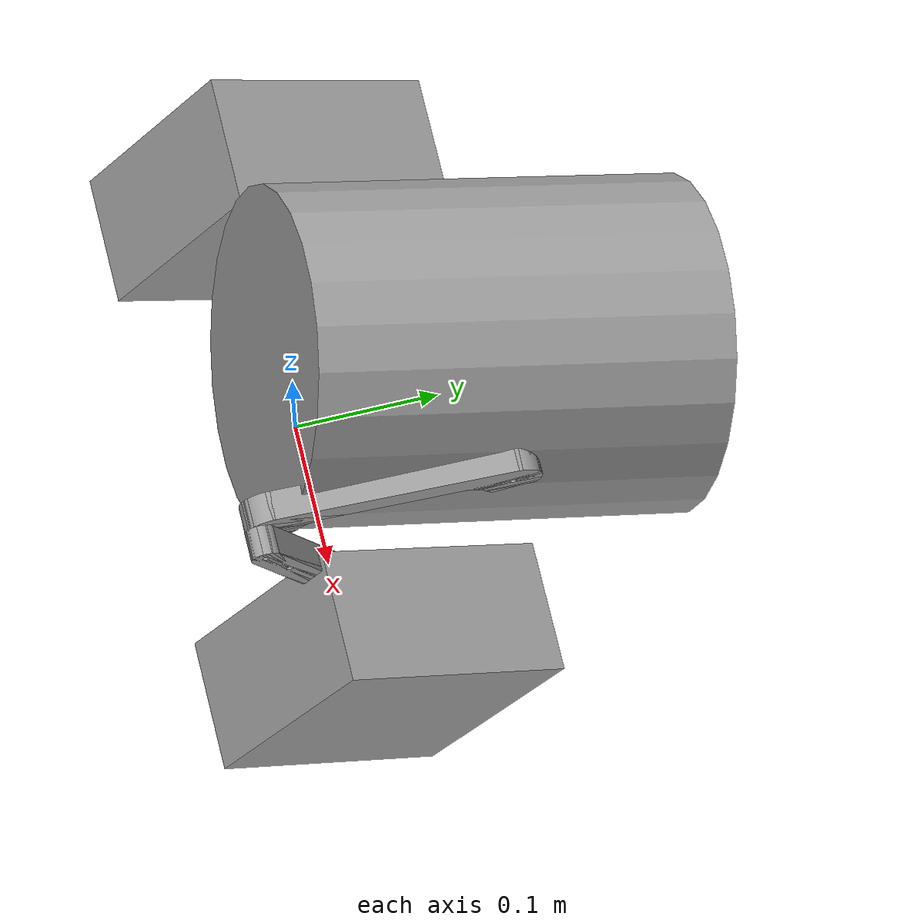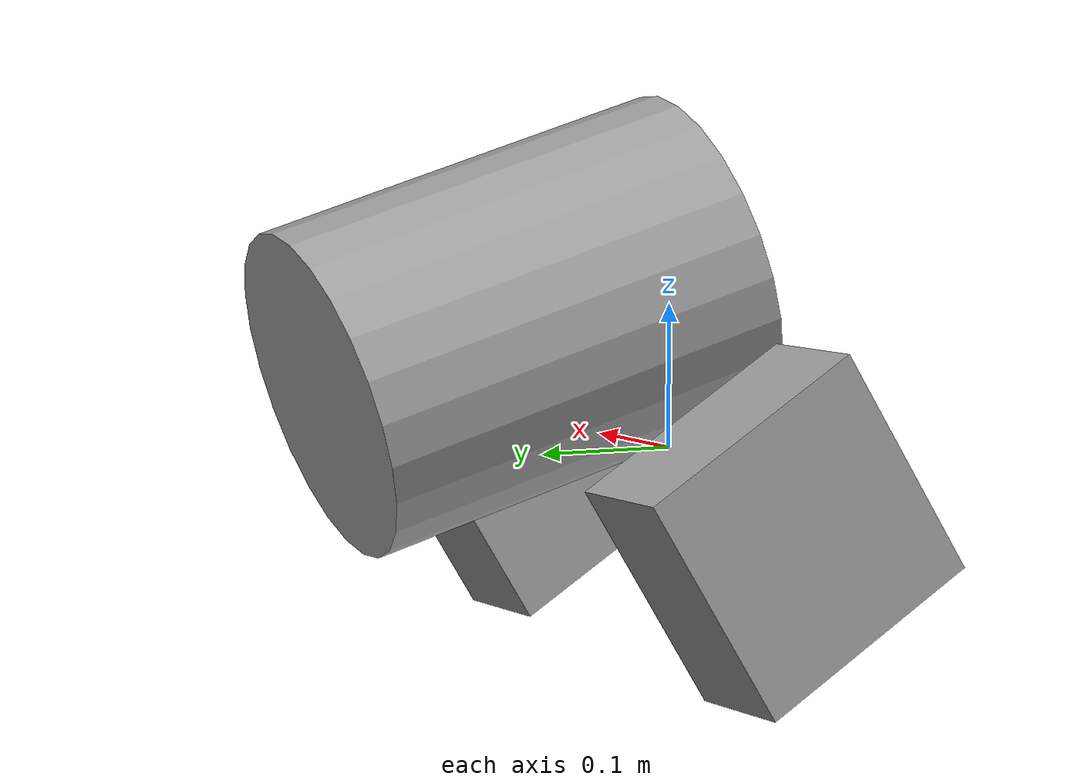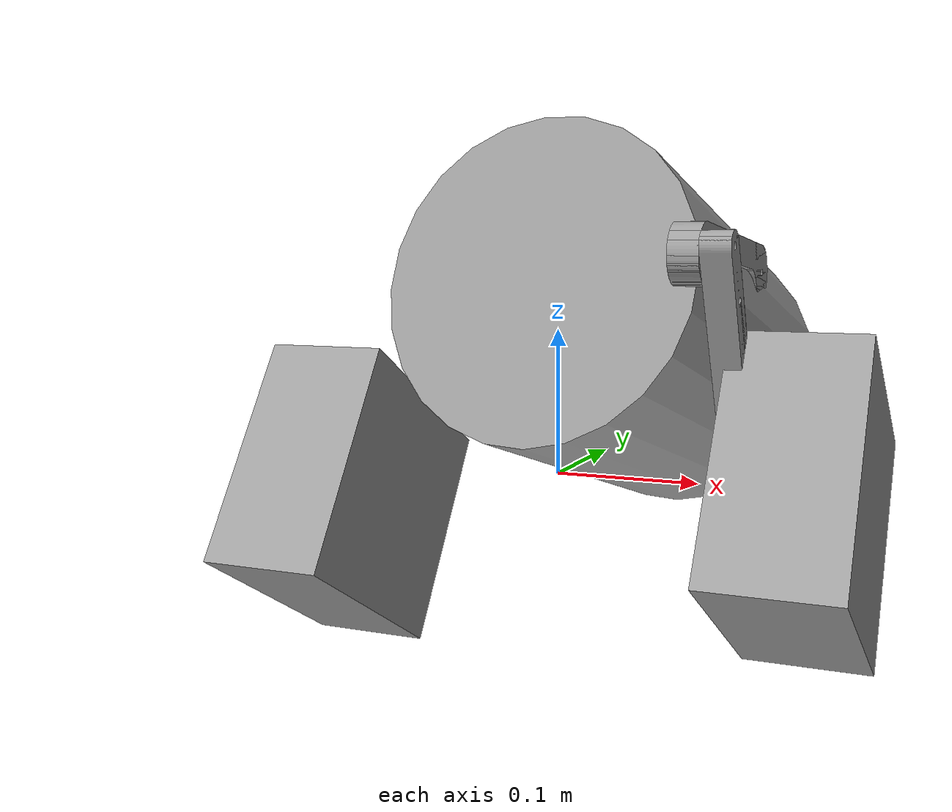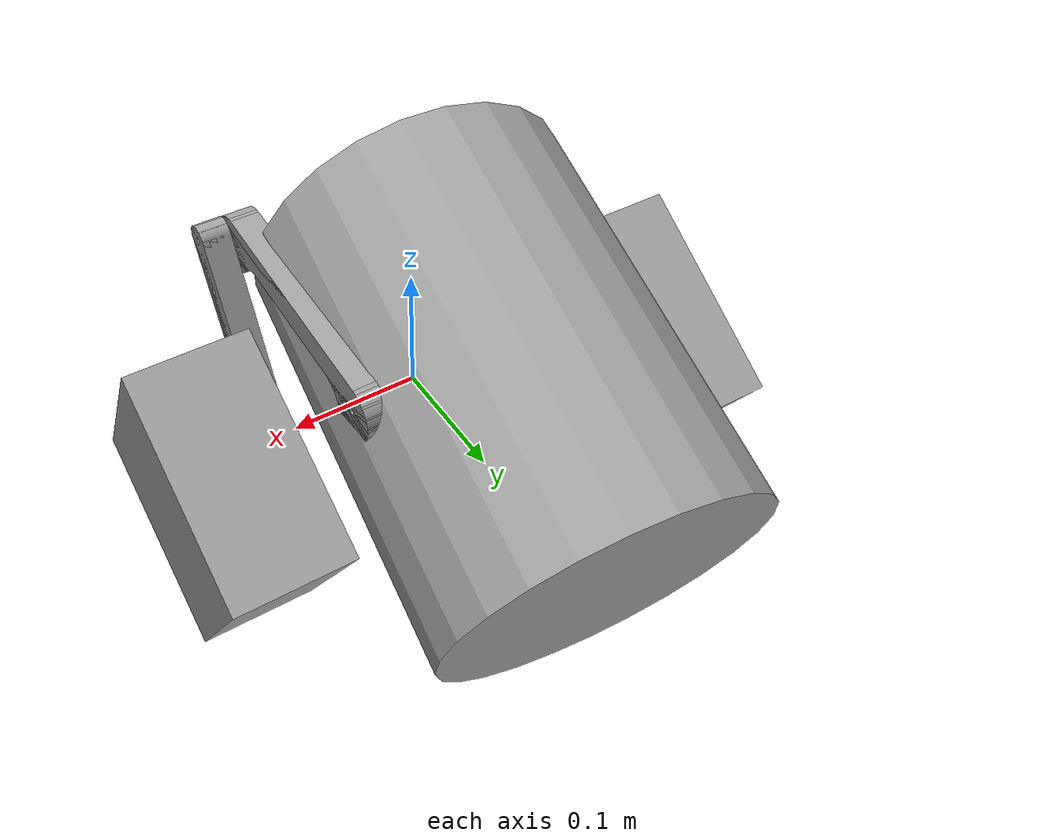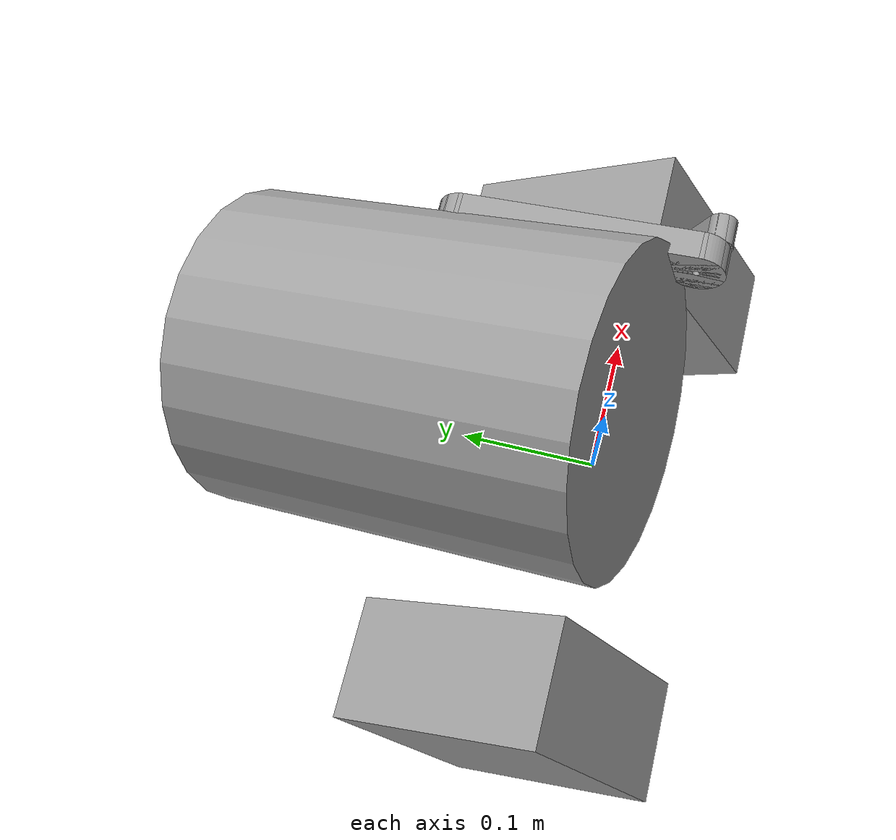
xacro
<?xml version="1.0"?>
<robot xmlns:xacro="http://www.ros.org/wiki/xacro" name="TWLR">

  <!-- Materials (shared across all assemblies) -->
  <material name="material">
    <color rgba="0.627 0.627 0.627 1.0"/>
  </material>

  <!-- Assembly includes -->
  <xacro:include filename="$(find TWLR_description)/urdf/assemblies/TWLR.urdf.xacro"/>

  <!-- Instantiate assemblies -->
  <xacro:TWLR prefix=""/>

</robot>

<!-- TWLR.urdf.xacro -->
<robot xmlns:xacro="http://www.ros.org/wiki/xacro" name="TWLR_macro">

  <xacro:macro name="TWLR" params="prefix">

    <!-- Links -->
    <link name="${prefix}base_link">
      <inertial>
        <origin xyz="-0.009947 0.139666 0.083952" rpy="0 0 0"/>
        <mass value="46.804719"/>
        <inertia ixx="2.702471e-01" ixy="-1.769772e-02" ixz="4.818044e-03"
                 iyy="2.854305e-01" iyz="5.655543e-02" izz="3.571536e-01"/>
      </inertial>
      <visual>
        <origin xyz="0.000000 0.000000 0.000000" rpy="0 0 0"/>
        <geometry>
          <mesh filename="package://TWLR_description/meshes/TWLR/base_link.dae" scale="1 1 1"/>
        </geometry>
        <material name="material"/>
      </visual>
      <collision>
        <origin xyz="0.000000 0.000000 0.000000" rpy="0 0 0"/>
        <geometry>
          <mesh filename="package://TWLR_description/meshes/TWLR/base_link_collision.stl" scale="0.01 0.01 0.01"/>
        </geometry>
      </collision>
    </link>

    <link name="${prefix}link1_right">
      <inertial>
        <origin xyz="0.000000 0.081855 -0.058806" rpy="0 0 0"/>
        <mass value="0.668075"/>
        <inertia ixx="2.577738e-03" ixy="2.710505e-20" ixz="1.084202e-19"
                 iyy="6.777796e-04" iyz="1.097009e-03" izz="1.944497e-03"/>
      </inertial>
      <visual>
        <origin xyz="-0.003370 -0.005265 -0.247899" rpy="0 0 0"/>
        <geometry>
          <mesh filename="package://TWLR_description/meshes/TWLR/link1_right.dae" scale="1 1 1"/>
        </geometry>
        <material name="material"/>
      </visual>
      <collision>
        <origin xyz="-0.003370 -0.005265 -0.247899" rpy="0 0 0"/>
        <geometry>
          <mesh filename="package://TWLR_description/meshes/TWLR/link1_right_collision.stl" scale="0.01 0.01 0.01"/>
        </geometry>
      </collision>
    </link>

    <link name="${prefix}link3_right">
      <inertial>
        <origin xyz="-0.020000 -0.091241 -0.155189" rpy="0 0 0"/>
        <mass value="0.808579"/>
        <inertia ixx="3.288359e-03" ixy="2.710505e-19" ixz="-5.421011e-20"
                 iyy="8.867435e-04" iyz="1.358601e-03" izz="2.455521e-03"/>
      </inertial>
      <visual>
        <origin xyz="-0.023370 0.034915 -0.081594" rpy="0 0 0"/>
        <geometry>
          <mesh filename="package://TWLR_description/meshes/TWLR/link3_right.dae" scale="1 1 1"/>
        </geometry>
        <material name="material"/>
      </visual>
      <collision>
        <origin xyz="-0.023370 0.034915 -0.081594" rpy="0 0 0"/>
        <geometry>
          <mesh filename="package://TWLR_description/meshes/TWLR/link3_right_collision.stl" scale="0.01 0.01 0.01"/>
        </geometry>
      </collision>
    </link>

    <link name="${prefix}link1_left">
      <inertial>
        <origin xyz="0.000000 0.078161 -0.063634" rpy="0 0 0"/>
        <mass value="0.668075"/>
        <inertia ixx="2.577738e-03" ixy="1.040834e-17" ixz="0.000000e+00"
                 iyy="8.144220e-04" iyz="1.165266e-03" izz="1.807854e-03"/>
      </inertial>
      <visual>
        <origin xyz="-0.374349 0.151319 -0.177245" rpy="0 0 0"/>
        <geometry>
          <mesh filename="package://TWLR_description/meshes/TWLR/link1_left.dae" scale="1 1 1"/>
        </geometry>
        <material name="material"/>
      </visual>
      <collision>
        <origin xyz="-0.374349 0.151319 -0.177245" rpy="0 0 0"/>
        <geometry>
          <mesh filename="package://TWLR_description/meshes/TWLR/link1_left_collision.stl" scale="0.01 0.01 0.01"/>
        </geometry>
      </collision>
    </link>

    <link name="${prefix}wheel_right">
      <inertial>
        <origin xyz="0.023768 0.026564 0.007725" rpy="0 0 0"/>
        <mass value="6.891403"/>
        <inertia ixx="1.292275e-02" ixy="-3.373183e-06" ixz="1.160100e-07"
                 iyy="2.386323e-02" iyz="6.269302e-09" izz="1.292376e-02"/>
      </inertial>
      <visual>
        <origin xyz="0.009205 0.026024 -0.166165" rpy="0 0 0"/>
        <geometry>
          <mesh filename="package://TWLR_description/meshes/TWLR/wheel_right.dae" scale="1 1 1"/>
        </geometry>
        <material name="material"/>
      </visual>
      <collision>
        <origin xyz="0.009205 0.026024 -0.166165" rpy="0 0 0"/>
        <geometry>
          <mesh filename="package://TWLR_description/meshes/TWLR/wheel_right_collision.stl" scale="0.01 0.01 0.01"/>
        </geometry>
      </collision>
    </link>

    <link name="${prefix}link3_left">
      <inertial>
        <origin xyz="-0.020000 -0.079980 0.161282" rpy="0 0 0"/>
        <mass value="0.808579"/>
        <inertia ixx="3.288359e-03" ixy="3.469447e-18" ixz="-1.387779e-17"
                 iyy="7.414920e-04" iyz="-1.263658e-03" izz="2.600773e-03"/>
      </inertial>
      <visual>
        <origin xyz="-0.374349 -0.004516 -0.050298" rpy="0 0 0"/>
        <geometry>
          <mesh filename="package://TWLR_description/meshes/TWLR/link3_left.dae" scale="1 1 1"/>
        </geometry>
        <material name="material"/>
      </visual>
      <collision>
        <origin xyz="-0.374349 -0.004516 -0.050298" rpy="0 0 0"/>
        <geometry>
          <mesh filename="package://TWLR_description/meshes/TWLR/link3_left_collision.stl" scale="0.01 0.01 0.01"/>
        </geometry>
      </collision>
    </link>

    <link name="${prefix}wheel_left">
      <inertial>
        <origin xyz="0.023768 0.026564 -0.007725" rpy="0 0 0"/>
        <mass value="6.891403"/>
        <inertia ixx="1.292275e-02" ixy="-3.373177e-06" ixz="-1.160037e-07"
                 iyy="2.386323e-02" iyz="-6.237206e-09" izz="1.292376e-02"/>
      </inertial>
      <visual>
        <origin xyz="0.084205 0.376024 0.321165" rpy="0 0 0"/>
        <geometry>
          <mesh filename="package://TWLR_description/meshes/TWLR/wheel_left.dae" scale="1 1 1"/>
        </geometry>
        <material name="material"/>
      </visual>
      <collision>
        <origin xyz="0.084205 0.376024 0.321165" rpy="0 0 0"/>
        <geometry>
          <mesh filename="package://TWLR_description/meshes/TWLR/wheel_left_collision.stl" scale="0.01 0.01 0.01"/>
        </geometry>
      </collision>
    </link>

    <!-- Joints (internal to assembly) -->
    <joint name="${prefix}hip_right" type="continuous">
      <parent link="${prefix}base_link"/>
      <child link="${prefix}link1_right"/>
      <origin xyz="0.123370 -0.038877 0.160846" rpy="-0.619267 -0.000000 0.000000"/>
      <axis xyz="1.000000 0.000000 0.000000"/>
      <limit effort="100.0" velocity="1.00"/>
    </joint>

    <joint name="${prefix}knee_right" type="continuous">
      <parent link="${prefix}link1_right"/>
      <child link="${prefix}link3_right"/>
      <origin xyz="0.000000 0.163205 -0.117321" rpy="-2.089403 -0.000000 0.000000"/>
      <axis xyz="1.000000 0.000000 0.000000"/>
      <limit effort="100.0" velocity="1.00"/>
    </joint>

    <joint name="${prefix}hip_left" type="continuous">
      <parent link="${prefix}link1_right"/>
      <child link="${prefix}link1_left"/>
      <origin xyz="0.000000 0.000000 -0.000000" rpy="0.060327 -0.000000 0.000000"/>
      <axis xyz="1.000000 0.000000 0.000000"/>
      <limit effort="100.0" velocity="1.00"/>
    </joint>

    <joint name="${prefix}wheel_right" type="continuous">
      <parent link="${prefix}link3_right"/>
      <child link="${prefix}wheel_right"/>
      <origin xyz="0.039494 -0.006035 0.007648" rpy="-3.141593 0.991862 1.570796"/>
      <axis xyz="0.309017 -0.000000 -0.951057"/>
      <limit effort="100.0" velocity="1.00"/>
    </joint>

    <joint name="${prefix}knee_left" type="continuous">
      <parent link="${prefix}link1_left"/>
      <child link="${prefix}link3_left"/>
      <origin xyz="0.000000 0.155835 -0.126947" rpy="0.000000 -0.000000 0.000000"/>
      <axis xyz="1.000000 0.000000 0.000000"/>
      <limit effort="100.0" velocity="1.00"/>
    </joint>

    <joint name="${prefix}wheel_left" type="continuous">
      <parent link="${prefix}link3_left"/>
      <child link="${prefix}wheel_left"/>
      <origin xyz="-0.303192 0.024704 -0.014133" rpy="3.141593 -0.000000 -1.570796"/>
      <axis xyz="-0.309017 0.000000 -0.951057"/>
      <limit effort="100.0" velocity="1.00"/>
    </joint>

    <!-- ROS 2 control: generated generic system -->
    <ros2_control name="${prefix}TWLR_system" type="system">
      <hardware>
        <plugin>mock_components/GenericSystem</plugin>
        <param name="cmd_topic">sim/TWLR_system/cmd</param>
        <param name="state_topic">sim/TWLR_system/state</param>
      </hardware>

      <joint name="${prefix}hip_left">
        <command_interface name="position"/>
        <command_interface name="velocity"/>
        <state_interface name="position">
          <param name="initial_value">0.0</param>
        </state_interface>
        <state_interface name="velocity"/>
        <state_interface name="effort"/>
      </joint>
      <joint name="${prefix}hip_right">
        <command_interface name="position"/>
        <command_interface name="velocity"/>
        <state_interface name="position">
          <param name="initial_value">0.0</param>
        </state_interface>
        <state_interface name="velocity"/>
        <state_interface name="effort"/>
      </joint>
      <joint name="${prefix}knee_left">
        <command_interface name="position"/>
        <command_interface name="velocity"/>
        <state_interface name="position">
          <param name="initial_value">0.0</param>
        </state_interface>
        <state_interface name="velocity"/>
        <state_interface name="effort"/>
      </joint>
      <joint name="${prefix}knee_right">
        <command_interface name="position"/>
        <command_interface name="velocity"/>
        <state_interface name="position">
          <param name="initial_value">0.0</param>
        </state_interface>
        <state_interface name="velocity"/>
        <state_interface name="effort"/>
      </joint>
      <joint name="${prefix}wheel_left">
        <command_interface name="position"/>
        <command_interface name="velocity"/>
        <state_interface name="position">
          <param name="initial_value">0.0</param>
        </state_interface>
        <state_interface name="velocity"/>
        <state_interface name="effort"/>
      </joint>
      <joint name="${prefix}wheel_right">
        <command_interface name="position"/>
        <command_interface name="velocity"/>
        <state_interface name="position">
          <param name="initial_value">0.0</param>
        </state_interface>
        <state_interface name="velocity"/>
        <state_interface name="effort"/>
      </joint>
    </ros2_control>

  </xacro:macro>

</robot>
